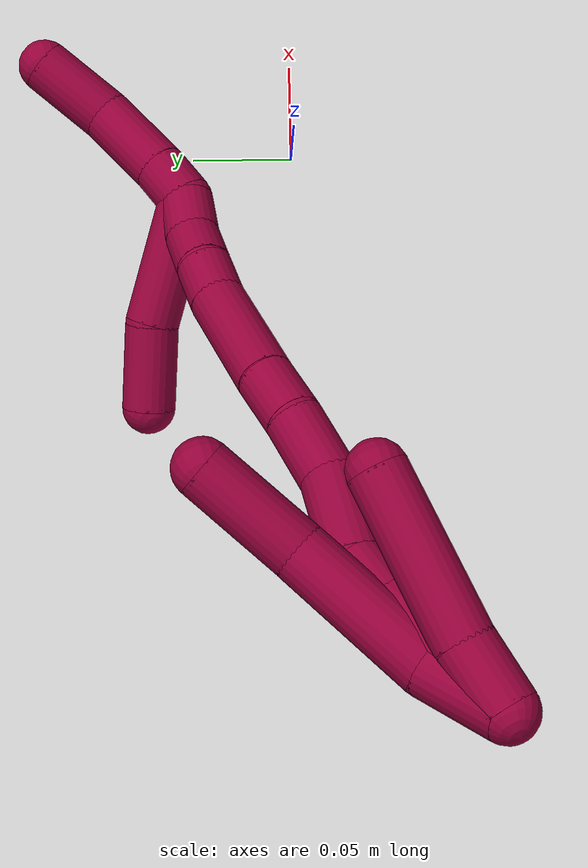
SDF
<sdf version="1.7">
 <world name="default">
  <model name="8">
   <static>0</static>
   <link name="8">
    <collision name="collision-cylinder-e_1_2_8">
     <pose>-0.003934 0.009012 -0.014506 -2.58571 -0.226386 0.758283</pose>
     <geometry><cylinder><radius>0.0125</radius><length>0.035049</length></cylinder></geometry>
     <surface>
      <friction><ode><mu>1.16</mu><mu2>1.16</mu2><slip1>0</slip1><slip2>0</slip2></ode></friction>
      <contact><ode><kp>1e+06</kp><kd>1</kd><max_vel>0</max_vel><min_depth>0.001</min_depth></ode></contact>
     </surface>
    </collision>
    <visual name="visual-cylinder-e_1_2_8">
     <pose>-0.003934 0.009012 -0.014506 -2.58571 -0.226386 0.758283</pose>
     <geometry><cylinder><radius>0.0125</radius><length>0.035049</length></cylinder></geometry>
     <material><ambient>0.584314 0 0.227451 1</ambient></material>
    </visual>
    <collision name="collision-cylinder-e_2_8_9">
     <pose>-0.004793 0.036346 -0.056163 -2.54796 0.093588 -0.303858</pose>
     <geometry><cylinder><radius>0.0125</radius><length>0.065797</length></cylinder></geometry>
     <surface>
      <friction><ode><mu>1.16</mu><mu2>1.16</mu2><slip1>0</slip1><slip2>0</slip2></ode></friction>
      <contact><ode><kp>1e+06</kp><kd>1</kd><max_vel>0</max_vel><min_depth>0.001</min_depth></ode></contact>
     </surface>
    </collision>
    <visual name="visual-cylinder-e_2_8_9">
     <pose>-0.004793 0.036346 -0.056163 -2.54796 0.093588 -0.303858</pose>
     <geometry><cylinder><radius>0.0125</radius><length>0.065797</length></cylinder></geometry>
     <material><ambient>0.584314 0 0.227451 1</ambient></material>
    </visual>
    <collision name="collision-cylinder-e_3_9_6">
     <pose>0.005181 0.072052 -0.099258 -2.31297 0.284556 -0.629791</pose>
     <geometry><cylinder><radius>0.0125</radius><length>0.049153</length></cylinder></geometry>
     <surface>
      <friction><ode><mu>1.16</mu><mu2>1.16</mu2><slip1>0</slip1><slip2>0</slip2></ode></friction>
      <contact><ode><kp>1e+06</kp><kd>1</kd><max_vel>0</max_vel><min_depth>0.001</min_depth></ode></contact>
     </surface>
    </collision>
    <visual name="visual-cylinder-e_3_9_6">
     <pose>0.005181 0.072052 -0.099258 -2.31297 0.284556 -0.629791</pose>
     <geometry><cylinder><radius>0.0125</radius><length>0.049153</length></cylinder></geometry>
     <material><ambient>0.584314 0 0.227451 1</ambient></material>
    </visual>
    <collision name="collision-cylinder-e_1_2_10">
     <pose>0.004374 0.005319 -0.012366 -2.73541 0.314184 -1.31133</pose>
     <geometry><cylinder><radius>0.0125</radius><length>0.028309</length></cylinder></geometry>
     <surface>
      <friction><ode><mu>1.16</mu><mu2>1.16</mu2><slip1>0</slip1><slip2>0</slip2></ode></friction>
      <contact><ode><kp>1e+06</kp><kd>1</kd><max_vel>0</max_vel><min_depth>0.001</min_depth></ode></contact>
     </surface>
    </collision>
    <visual name="visual-cylinder-e_1_2_10">
     <pose>0.004374 0.005319 -0.012366 -2.73541 0.314184 -1.31133</pose>
     <geometry><cylinder><radius>0.0125</radius><length>0.028309</length></cylinder></geometry>
     <material><ambient>0.584314 0 0.227451 1</ambient></material>
    </visual>
    <collision name="collision-cylinder-e_2_10_5">
     <pose>0.023672 0.022344 -0.055149 -2.77419 0.429393 -1.73022</pose>
     <geometry><cylinder><radius>0.0125</radius><length>0.071691</length></cylinder></geometry>
     <surface>
      <friction><ode><mu>1.16</mu><mu2>1.16</mu2><slip1>0</slip1><slip2>0</slip2></ode></friction>
      <contact><ode><kp>1e+06</kp><kd>1</kd><max_vel>0</max_vel><min_depth>0.001</min_depth></ode></contact>
     </surface>
    </collision>
    <visual name="visual-cylinder-e_2_10_5">
     <pose>0.023672 0.022344 -0.055149 -2.77419 0.429393 -1.73022</pose>
     <geometry><cylinder><radius>0.0125</radius><length>0.071691</length></cylinder></geometry>
     <material><ambient>0.584314 0 0.227451 1</ambient></material>
    </visual>
    <collision name="collision-cylinder-e_1_2_11">
     <pose>-0.002416 0.012626 -0.029392 -2.73584 -0.075395 0.362666</pose>
     <geometry><cylinder><radius>0.0125</radius><length>0.064161</length></cylinder></geometry>
     <surface>
      <friction><ode><mu>1.16</mu><mu2>1.16</mu2><slip1>0</slip1><slip2>0</slip2></ode></friction>
      <contact><ode><kp>1e+06</kp><kd>1</kd><max_vel>0</max_vel><min_depth>0.001</min_depth></ode></contact>
     </surface>
    </collision>
    <visual name="visual-cylinder-e_1_2_11">
     <pose>-0.002416 0.012626 -0.029392 -2.73584 -0.075395 0.362666</pose>
     <geometry><cylinder><radius>0.0125</radius><length>0.064161</length></cylinder></geometry>
     <material><ambient>0.584314 0 0.227451 1</ambient></material>
    </visual>
    <collision name="collision-cylinder-e_2_11_12">
     <pose>-0.004558 0.028309 -0.069247 -2.8574 0.025228 -0.175902</pose>
     <geometry><cylinder><radius>0.0125</radius><length>0.021808</length></cylinder></geometry>
     <surface>
      <friction><ode><mu>1.16</mu><mu2>1.16</mu2><slip1>0</slip1><slip2>0</slip2></ode></friction>
      <contact><ode><kp>1e+06</kp><kd>1</kd><max_vel>0</max_vel><min_depth>0.001</min_depth></ode></contact>
     </surface>
    </collision>
    <visual name="visual-cylinder-e_2_11_12">
     <pose>-0.004558 0.028309 -0.069247 -2.8574 0.025228 -0.175902</pose>
     <geometry><cylinder><radius>0.0125</radius><length>0.021808</length></cylinder></geometry>
     <material><ambient>0.584314 0 0.227451 1</ambient></material>
    </visual>
    <collision name="collision-cylinder-e_3_12_13">
     <pose>-0.002094 0.030216 -0.101166 3.08809 0.101494 2.17177</pose>
     <geometry><cylinder><radius>0.0125</radius><length>0.043194</length></cylinder></geometry>
     <surface>
      <friction><ode><mu>1.16</mu><mu2>1.16</mu2><slip1>0</slip1><slip2>0</slip2></ode></friction>
      <contact><ode><kp>1e+06</kp><kd>1</kd><max_vel>0</max_vel><min_depth>0.001</min_depth></ode></contact>
     </surface>
    </collision>
    <visual name="visual-cylinder-e_3_12_13">
     <pose>-0.002094 0.030216 -0.101166 3.08809 0.101494 2.17177</pose>
     <geometry><cylinder><radius>0.0125</radius><length>0.043194</length></cylinder></geometry>
     <material><ambient>0.584314 0 0.227451 1</ambient></material>
    </visual>
    <collision name="collision-cylinder-e_4_13_14">
     <pose>0.003334 0.033311 -0.137249 -2.85923 0.209623 -1.27435</pose>
     <geometry><cylinder><radius>0.0125</radius><length>0.031144</length></cylinder></geometry>
     <surface>
      <friction><ode><mu>1.16</mu><mu2>1.16</mu2><slip1>0</slip1><slip2>0</slip2></ode></friction>
      <contact><ode><kp>1e+06</kp><kd>1</kd><max_vel>0</max_vel><min_depth>0.001</min_depth></ode></contact>
     </surface>
    </collision>
    <visual name="visual-cylinder-e_4_13_14">
     <pose>0.003334 0.033311 -0.137249 -2.85923 0.209623 -1.27435</pose>
     <geometry><cylinder><radius>0.0125</radius><length>0.031144</length></cylinder></geometry>
     <material><ambient>0.584314 0 0.227451 1</ambient></material>
    </visual>
    <collision name="collision-cylinder-e_5_14_15">
     <pose>0.007208 0.04029 -0.164331 -2.92537 0.049625 -0.449589</pose>
     <geometry><cylinder><radius>0.0125</radius><length>0.025533</length></cylinder></geometry>
     <surface>
      <friction><ode><mu>1.16</mu><mu2>1.16</mu2><slip1>0</slip1><slip2>0</slip2></ode></friction>
      <contact><ode><kp>1e+06</kp><kd>1</kd><max_vel>0</max_vel><min_depth>0.001</min_depth></ode></contact>
     </surface>
    </collision>
    <visual name="visual-cylinder-e_5_14_15">
     <pose>0.007208 0.04029 -0.164331 -2.92537 0.049625 -0.449589</pose>
     <geometry><cylinder><radius>0.0125</radius><length>0.025533</length></cylinder></geometry>
     <material><ambient>0.584314 0 0.227451 1</ambient></material>
    </visual>
    <collision name="collision-cylinder-e_6_15_16">
     <pose>0.008589 0.046761 -0.202553 -2.99766 0.028703 -0.393037</pose>
     <geometry><cylinder><radius>0.0125</radius><length>0.052098</length></cylinder></geometry>
     <surface>
      <friction><ode><mu>1.16</mu><mu2>1.16</mu2><slip1>0</slip1><slip2>0</slip2></ode></friction>
      <contact><ode><kp>1e+06</kp><kd>1</kd><max_vel>0</max_vel><min_depth>0.001</min_depth></ode></contact>
     </surface>
    </collision>
    <visual name="visual-cylinder-e_6_15_16">
     <pose>0.008589 0.046761 -0.202553 -2.99766 0.028703 -0.393037</pose>
     <geometry><cylinder><radius>0.0125</radius><length>0.052098</length></cylinder></geometry>
     <material><ambient>0.584314 0 0.227451 1</ambient></material>
    </visual>
    <collision name="collision-cylinder-e_7_16_17">
     <pose>0.011261 0.051535 -0.238387 -3.03869 0.187931 -2.14142</pose>
     <geometry><cylinder><radius>0.0125</radius><length>0.0206</length></cylinder></geometry>
     <surface>
      <friction><ode><mu>1.16</mu><mu2>1.16</mu2><slip1>0</slip1><slip2>0</slip2></ode></friction>
      <contact><ode><kp>1e+06</kp><kd>1</kd><max_vel>0</max_vel><min_depth>0.001</min_depth></ode></contact>
     </surface>
    </collision>
    <visual name="visual-cylinder-e_7_16_17">
     <pose>0.011261 0.051535 -0.238387 -3.03869 0.187931 -2.14142</pose>
     <geometry><cylinder><radius>0.0125</radius><length>0.0206</length></cylinder></geometry>
     <material><ambient>0.584314 0 0.227451 1</ambient></material>
    </visual>
    <collision name="collision-cylinder-e_8_17_18">
     <pose>0.01379 0.052631 -0.259049 -3.1362 0.057066 -2.95329</pose>
     <geometry><cylinder><radius>0.0125</radius><length>0.021229</length></cylinder></geometry>
     <surface>
      <friction><ode><mu>1.16</mu><mu2>1.16</mu2><slip1>0</slip1><slip2>0</slip2></ode></friction>
      <contact><ode><kp>1e+06</kp><kd>1</kd><max_vel>0</max_vel><min_depth>0.001</min_depth></ode></contact>
     </surface>
    </collision>
    <visual name="visual-cylinder-e_8_17_18">
     <pose>0.01379 0.052631 -0.259049 -3.1362 0.057066 -2.95329</pose>
     <geometry><cylinder><radius>0.0125</radius><length>0.021229</length></cylinder></geometry>
     <material><ambient>0.584314 0 0.227451 1</ambient></material>
    </visual>
    <collision name="collision-cylinder-e_9_18_1">
     <pose>0.01824 0.052813 -0.279003 -3.12827 0.389829 -3.07412</pose>
     <geometry><cylinder><radius>0.0125</radius><length>0.020234</length></cylinder></geometry>
     <surface>
      <friction><ode><mu>1.16</mu><mu2>1.16</mu2><slip1>0</slip1><slip2>0</slip2></ode></friction>
      <contact><ode><kp>1e+06</kp><kd>1</kd><max_vel>0</max_vel><min_depth>0.001</min_depth></ode></contact>
     </surface>
    </collision>
    <visual name="visual-cylinder-e_9_18_1">
     <pose>0.01824 0.052813 -0.279003 -3.12827 0.389829 -3.07412</pose>
     <geometry><cylinder><radius>0.0125</radius><length>0.020234</length></cylinder></geometry>
     <material><ambient>0.584314 0 0.227451 1</ambient></material>
    </visual>
    <collision name="collision-cylinder-e_1_1_19">
     <pose>-0.004216 0.058145 -0.275134 -0.375036 -1.07533 0.225318</pose>
     <geometry><cylinder><radius>0.0125</radius><length>0.059794</length></cylinder></geometry>
     <surface>
      <friction><ode><mu>1.16</mu><mu2>1.16</mu2><slip1>0</slip1><slip2>0</slip2></ode></friction>
      <contact><ode><kp>1e+06</kp><kd>1</kd><max_vel>0</max_vel><min_depth>0.001</min_depth></ode></contact>
     </surface>
    </collision>
    <visual name="visual-cylinder-e_1_1_19">
     <pose>-0.004216 0.058145 -0.275134 -0.375036 -1.07533 0.225318</pose>
     <geometry><cylinder><radius>0.0125</radius><length>0.059794</length></cylinder></geometry>
     <material><ambient>0.584314 0 0.227451 1</ambient></material>
    </visual>
    <collision name="collision-cylinder-e_2_19_4">
     <pose>-0.048423 0.062062 -0.252858 0.14146 -1.09874 -0.086697</pose>
     <geometry><cylinder><radius>0.0125</radius><length>0.040206</length></cylinder></geometry>
     <surface>
      <friction><ode><mu>1.16</mu><mu2>1.16</mu2><slip1>0</slip1><slip2>0</slip2></ode></friction>
      <contact><ode><kp>1e+06</kp><kd>1</kd><max_vel>0</max_vel><min_depth>0.001</min_depth></ode></contact>
     </surface>
    </collision>
    <visual name="visual-cylinder-e_2_19_4">
     <pose>-0.048423 0.062062 -0.252858 0.14146 -1.09874 -0.086697</pose>
     <geometry><cylinder><radius>0.0125</radius><length>0.040206</length></cylinder></geometry>
     <material><ambient>0.584314 0 0.227451 1</ambient></material>
    </visual>
    <collision name="collision-cylinder-e_1_1_20">
     <pose>0.023985 0.057388 -0.297915 -2.70574 0.178362 -0.767546</pose>
     <geometry><cylinder><radius>0.0125</radius><length>0.02142</length></cylinder></geometry>
     <surface>
      <friction><ode><mu>1.16</mu><mu2>1.16</mu2><slip1>0</slip1><slip2>0</slip2></ode></friction>
      <contact><ode><kp>1e+06</kp><kd>1</kd><max_vel>0</max_vel><min_depth>0.001</min_depth></ode></contact>
     </surface>
    </collision>
    <visual name="visual-cylinder-e_1_1_20">
     <pose>0.023985 0.057388 -0.297915 -2.70574 0.178362 -0.767546</pose>
     <geometry><cylinder><radius>0.0125</radius><length>0.02142</length></cylinder></geometry>
     <material><ambient>0.584314 0 0.227451 1</ambient></material>
    </visual>
    <collision name="collision-cylinder-e_2_20_21">
     <pose>0.0286 0.071441 -0.324715 -2.63347 0.136666 -0.515406</pose>
     <geometry><cylinder><radius>0.0125</radius><length>0.039849</length></cylinder></geometry>
     <surface>
      <friction><ode><mu>1.16</mu><mu2>1.16</mu2><slip1>0</slip1><slip2>0</slip2></ode></friction>
      <contact><ode><kp>1e+06</kp><kd>1</kd><max_vel>0</max_vel><min_depth>0.001</min_depth></ode></contact>
     </surface>
    </collision>
    <visual name="visual-cylinder-e_2_20_21">
     <pose>0.0286 0.071441 -0.324715 -2.63347 0.136666 -0.515406</pose>
     <geometry><cylinder><radius>0.0125</radius><length>0.039849</length></cylinder></geometry>
     <material><ambient>0.584314 0 0.227451 1</ambient></material>
    </visual>
    <collision name="collision-cylinder-e_3_21_3">
     <pose>0.036104 0.09476 -0.354764 -2.32184 0.249916 -0.56287</pose>
     <geometry><cylinder><radius>0.0125</radius><length>0.038731</length></cylinder></geometry>
     <surface>
      <friction><ode><mu>1.16</mu><mu2>1.16</mu2><slip1>0</slip1><slip2>0</slip2></ode></friction>
      <contact><ode><kp>1e+06</kp><kd>1</kd><max_vel>0</max_vel><min_depth>0.001</min_depth></ode></contact>
     </surface>
    </collision>
    <visual name="visual-cylinder-e_3_21_3">
     <pose>0.036104 0.09476 -0.354764 -2.32184 0.249916 -0.56287</pose>
     <geometry><cylinder><radius>0.0125</radius><length>0.038731</length></cylinder></geometry>
     <material><ambient>0.584314 0 0.227451 1</ambient></material>
    </visual>
    <collision name="collision-sphere-3">
     <pose>0.040893 0.108476 -0.367569 0 -0 0</pose>
     <geometry><sphere><radius>0.0125</radius></sphere></geometry>
     <surface>
      <friction><ode><mu>1.16</mu><mu2>1.16</mu2><slip1>0</slip1><slip2>0</slip2></ode></friction>
      <contact><ode><kp>1e+06</kp><kd>1</kd><max_vel>0</max_vel><min_depth>0.001</min_depth></ode></contact>
     </surface>
    </collision>
    <visual name="visual-sphere-3">
     <pose>0.040893 0.108476 -0.367569 0 -0 0</pose>
     <geometry><sphere><radius>0.0125</radius></sphere></geometry>
     <material><ambient>0.584314 0 0.227451 1</ambient></material>
    </visual>
    <collision name="collision-sphere-21">
     <pose>0.031314 0.081045 -0.34196 0 -0 0</pose>
     <geometry><sphere><radius>0.0125</radius></sphere></geometry>
     <surface>
      <friction><ode><mu>1.16</mu><mu2>1.16</mu2><slip1>0</slip1><slip2>0</slip2></ode></friction>
      <contact><ode><kp>1e+06</kp><kd>1</kd><max_vel>0</max_vel><min_depth>0.001</min_depth></ode></contact>
     </surface>
    </collision>
    <visual name="visual-sphere-21">
     <pose>0.031314 0.081045 -0.34196 0 -0 0</pose>
     <geometry><sphere><radius>0.0125</radius></sphere></geometry>
     <material><ambient>0.584314 0 0.227451 1</ambient></material>
    </visual>
    <collision name="collision-sphere-20">
     <pose>0.025885 0.061838 -0.30747 0 -0 0</pose>
     <geometry><sphere><radius>0.0125</radius></sphere></geometry>
     <surface>
      <friction><ode><mu>1.16</mu><mu2>1.16</mu2><slip1>0</slip1><slip2>0</slip2></ode></friction>
      <contact><ode><kp>1e+06</kp><kd>1</kd><max_vel>0</max_vel><min_depth>0.001</min_depth></ode></contact>
     </surface>
    </collision>
    <visual name="visual-sphere-20">
     <pose>0.025885 0.061838 -0.30747 0 -0 0</pose>
     <geometry><sphere><radius>0.0125</radius></sphere></geometry>
     <material><ambient>0.584314 0 0.227451 1</ambient></material>
    </visual>
    <collision name="collision-sphere-4">
     <pose>-0.066327 0.060774 -0.243808 0 -0 0</pose>
     <geometry><sphere><radius>0.0125</radius></sphere></geometry>
     <surface>
      <friction><ode><mu>1.16</mu><mu2>1.16</mu2><slip1>0</slip1><slip2>0</slip2></ode></friction>
      <contact><ode><kp>1e+06</kp><kd>1</kd><max_vel>0</max_vel><min_depth>0.001</min_depth></ode></contact>
     </surface>
    </collision>
    <visual name="visual-sphere-4">
     <pose>-0.066327 0.060774 -0.243808 0 -0 0</pose>
     <geometry><sphere><radius>0.0125</radius></sphere></geometry>
     <material><ambient>0.584314 0 0.227451 1</ambient></material>
    </visual>
    <collision name="collision-sphere-5">
     <pose>0.038595 0.034051 -0.085565 0 -0 0</pose>
     <geometry><sphere><radius>0.0125</radius></sphere></geometry>
     <surface>
      <friction><ode><mu>1.16</mu><mu2>1.16</mu2><slip1>0</slip1><slip2>0</slip2></ode></friction>
      <contact><ode><kp>1e+06</kp><kd>1</kd><max_vel>0</max_vel><min_depth>0.001</min_depth></ode></contact>
     </surface>
    </collision>
    <visual name="visual-sphere-5">
     <pose>0.038595 0.034051 -0.085565 0 -0 0</pose>
     <geometry><sphere><radius>0.0125</radius></sphere></geometry>
     <material><ambient>0.584314 0 0.227451 1</ambient></material>
    </visual>
    <collision name="collision-sphere-10">
     <pose>0.008749 0.010638 -0.024733 0 -0 0</pose>
     <geometry><sphere><radius>0.0125</radius></sphere></geometry>
     <surface>
      <friction><ode><mu>1.16</mu><mu2>1.16</mu2><slip1>0</slip1><slip2>0</slip2></ode></friction>
      <contact><ode><kp>1e+06</kp><kd>1</kd><max_vel>0</max_vel><min_depth>0.001</min_depth></ode></contact>
     </surface>
    </collision>
    <visual name="visual-sphere-10">
     <pose>0.008749 0.010638 -0.024733 0 -0 0</pose>
     <geometry><sphere><radius>0.0125</radius></sphere></geometry>
     <material><ambient>0.584314 0 0.227451 1</ambient></material>
    </visual>
    <collision name="collision-sphere-6">
     <pose>0.012081 0.089437 -0.115201 0 -0 0</pose>
     <geometry><sphere><radius>0.0125</radius></sphere></geometry>
     <surface>
      <friction><ode><mu>1.16</mu><mu2>1.16</mu2><slip1>0</slip1><slip2>0</slip2></ode></friction>
      <contact><ode><kp>1e+06</kp><kd>1</kd><max_vel>0</max_vel><min_depth>0.001</min_depth></ode></contact>
     </surface>
    </collision>
    <visual name="visual-sphere-6">
     <pose>0.012081 0.089437 -0.115201 0 -0 0</pose>
     <geometry><sphere><radius>0.0125</radius></sphere></geometry>
     <material><ambient>0.584314 0 0.227451 1</ambient></material>
    </visual>
    <collision name="collision-sphere-9">
     <pose>-0.001718 0.054668 -0.083314 0 -0 0</pose>
     <geometry><sphere><radius>0.0125</radius></sphere></geometry>
     <surface>
      <friction><ode><mu>1.16</mu><mu2>1.16</mu2><slip1>0</slip1><slip2>0</slip2></ode></friction>
      <contact><ode><kp>1e+06</kp><kd>1</kd><max_vel>0</max_vel><min_depth>0.001</min_depth></ode></contact>
     </surface>
    </collision>
    <visual name="visual-sphere-9">
     <pose>-0.001718 0.054668 -0.083314 0 -0 0</pose>
     <geometry><sphere><radius>0.0125</radius></sphere></geometry>
     <material><ambient>0.584314 0 0.227451 1</ambient></material>
    </visual>
    <collision name="collision-sphere-2">
     <geometry><sphere><radius>0.0125</radius></sphere></geometry>
     <surface>
      <friction><ode><mu>1.16</mu><mu2>1.16</mu2><slip1>0</slip1><slip2>0</slip2></ode></friction>
      <contact><ode><kp>1e+06</kp><kd>1</kd><max_vel>0</max_vel><min_depth>0.001</min_depth></ode></contact>
     </surface>
    </collision>
    <visual name="visual-sphere-2">
     <geometry><sphere><radius>0.0125</radius></sphere></geometry>
     <material><ambient>0.584314 0 0.227451 1</ambient></material>
    </visual>
    <collision name="collision-sphere-19">
     <pose>-0.030518 0.063351 -0.261908 0 -0 0</pose>
     <geometry><sphere><radius>0.0125</radius></sphere></geometry>
     <surface>
      <friction><ode><mu>1.16</mu><mu2>1.16</mu2><slip1>0</slip1><slip2>0</slip2></ode></friction>
      <contact><ode><kp>1e+06</kp><kd>1</kd><max_vel>0</max_vel><min_depth>0.001</min_depth></ode></contact>
     </surface>
    </collision>
    <visual name="visual-sphere-19">
     <pose>-0.030518 0.063351 -0.261908 0 -0 0</pose>
     <geometry><sphere><radius>0.0125</radius></sphere></geometry>
     <material><ambient>0.584314 0 0.227451 1</ambient></material>
    </visual>
    <collision name="collision-sphere-8">
     <pose>-0.007867 0.018023 -0.029013 0 -0 0</pose>
     <geometry><sphere><radius>0.0125</radius></sphere></geometry>
     <surface>
      <friction><ode><mu>1.16</mu><mu2>1.16</mu2><slip1>0</slip1><slip2>0</slip2></ode></friction>
      <contact><ode><kp>1e+06</kp><kd>1</kd><max_vel>0</max_vel><min_depth>0.001</min_depth></ode></contact>
     </surface>
    </collision>
    <visual name="visual-sphere-8">
     <pose>-0.007867 0.018023 -0.029013 0 -0 0</pose>
     <geometry><sphere><radius>0.0125</radius></sphere></geometry>
     <material><ambient>0.584314 0 0.227451 1</ambient></material>
    </visual>
    <collision name="collision-sphere-11">
     <pose>-0.004833 0.025253 -0.058784 0 -0 0</pose>
     <geometry><sphere><radius>0.0125</radius></sphere></geometry>
     <surface>
      <friction><ode><mu>1.16</mu><mu2>1.16</mu2><slip1>0</slip1><slip2>0</slip2></ode></friction>
      <contact><ode><kp>1e+06</kp><kd>1</kd><max_vel>0</max_vel><min_depth>0.001</min_depth></ode></contact>
     </surface>
    </collision>
    <visual name="visual-sphere-11">
     <pose>-0.004833 0.025253 -0.058784 0 -0 0</pose>
     <geometry><sphere><radius>0.0125</radius></sphere></geometry>
     <material><ambient>0.584314 0 0.227451 1</ambient></material>
    </visual>
    <collision name="collision-sphere-12">
     <pose>-0.004283 0.031365 -0.07971 0 -0 0</pose>
     <geometry><sphere><radius>0.0125</radius></sphere></geometry>
     <surface>
      <friction><ode><mu>1.16</mu><mu2>1.16</mu2><slip1>0</slip1><slip2>0</slip2></ode></friction>
      <contact><ode><kp>1e+06</kp><kd>1</kd><max_vel>0</max_vel><min_depth>0.001</min_depth></ode></contact>
     </surface>
    </collision>
    <visual name="visual-sphere-12">
     <pose>-0.004283 0.031365 -0.07971 0 -0 0</pose>
     <geometry><sphere><radius>0.0125</radius></sphere></geometry>
     <material><ambient>0.584314 0 0.227451 1</ambient></material>
    </visual>
    <collision name="collision-sphere-13">
     <pose>9.4e-05 0.029067 -0.122621 0 -0 0</pose>
     <geometry><sphere><radius>0.0125</radius></sphere></geometry>
     <surface>
      <friction><ode><mu>1.16</mu><mu2>1.16</mu2><slip1>0</slip1><slip2>0</slip2></ode></friction>
      <contact><ode><kp>1e+06</kp><kd>1</kd><max_vel>0</max_vel><min_depth>0.001</min_depth></ode></contact>
     </surface>
    </collision>
    <visual name="visual-sphere-13">
     <pose>9.4e-05 0.029067 -0.122621 0 -0 0</pose>
     <geometry><sphere><radius>0.0125</radius></sphere></geometry>
     <material><ambient>0.584314 0 0.227451 1</ambient></material>
    </visual>
    <collision name="collision-sphere-14">
     <pose>0.006575 0.037555 -0.151877 0 -0 0</pose>
     <geometry><sphere><radius>0.0125</radius></sphere></geometry>
     <surface>
      <friction><ode><mu>1.16</mu><mu2>1.16</mu2><slip1>0</slip1><slip2>0</slip2></ode></friction>
      <contact><ode><kp>1e+06</kp><kd>1</kd><max_vel>0</max_vel><min_depth>0.001</min_depth></ode></contact>
     </surface>
    </collision>
    <visual name="visual-sphere-14">
     <pose>0.006575 0.037555 -0.151877 0 -0 0</pose>
     <geometry><sphere><radius>0.0125</radius></sphere></geometry>
     <material><ambient>0.584314 0 0.227451 1</ambient></material>
    </visual>
    <collision name="collision-sphere-15">
     <pose>0.007841 0.043026 -0.176784 0 -0 0</pose>
     <geometry><sphere><radius>0.0125</radius></sphere></geometry>
     <surface>
      <friction><ode><mu>1.16</mu><mu2>1.16</mu2><slip1>0</slip1><slip2>0</slip2></ode></friction>
      <contact><ode><kp>1e+06</kp><kd>1</kd><max_vel>0</max_vel><min_depth>0.001</min_depth></ode></contact>
     </surface>
    </collision>
    <visual name="visual-sphere-15">
     <pose>0.007841 0.043026 -0.176784 0 -0 0</pose>
     <geometry><sphere><radius>0.0125</radius></sphere></geometry>
     <material><ambient>0.584314 0 0.227451 1</ambient></material>
    </visual>
    <collision name="collision-sphere-16">
     <pose>0.009336 0.050495 -0.228322 0 -0 0</pose>
     <geometry><sphere><radius>0.0125</radius></sphere></geometry>
     <surface>
      <friction><ode><mu>1.16</mu><mu2>1.16</mu2><slip1>0</slip1><slip2>0</slip2></ode></friction>
      <contact><ode><kp>1e+06</kp><kd>1</kd><max_vel>0</max_vel><min_depth>0.001</min_depth></ode></contact>
     </surface>
    </collision>
    <visual name="visual-sphere-16">
     <pose>0.009336 0.050495 -0.228322 0 -0 0</pose>
     <geometry><sphere><radius>0.0125</radius></sphere></geometry>
     <material><ambient>0.584314 0 0.227451 1</ambient></material>
    </visual>
    <collision name="collision-sphere-17">
     <pose>0.013185 0.052574 -0.248452 0 -0 0</pose>
     <geometry><sphere><radius>0.0125</radius></sphere></geometry>
     <surface>
      <friction><ode><mu>1.16</mu><mu2>1.16</mu2><slip1>0</slip1><slip2>0</slip2></ode></friction>
      <contact><ode><kp>1e+06</kp><kd>1</kd><max_vel>0</max_vel><min_depth>0.001</min_depth></ode></contact>
     </surface>
    </collision>
    <visual name="visual-sphere-17">
     <pose>0.013185 0.052574 -0.248452 0 -0 0</pose>
     <geometry><sphere><radius>0.0125</radius></sphere></geometry>
     <material><ambient>0.584314 0 0.227451 1</ambient></material>
    </visual>
    <collision name="collision-sphere-18">
     <pose>0.014396 0.052688 -0.269646 0 -0 0</pose>
     <geometry><sphere><radius>0.0125</radius></sphere></geometry>
     <surface>
      <friction><ode><mu>1.16</mu><mu2>1.16</mu2><slip1>0</slip1><slip2>0</slip2></ode></friction>
      <contact><ode><kp>1e+06</kp><kd>1</kd><max_vel>0</max_vel><min_depth>0.001</min_depth></ode></contact>
     </surface>
    </collision>
    <visual name="visual-sphere-18">
     <pose>0.014396 0.052688 -0.269646 0 -0 0</pose>
     <geometry><sphere><radius>0.0125</radius></sphere></geometry>
     <material><ambient>0.584314 0 0.227451 1</ambient></material>
    </visual>
    <collision name="collision-sphere-1">
     <pose>0.022085 0.052938 -0.28836 0 -0 0</pose>
     <geometry><sphere><radius>0.0125</radius></sphere></geometry>
     <surface>
      <friction><ode><mu>1.16</mu><mu2>1.16</mu2><slip1>0</slip1><slip2>0</slip2></ode></friction>
      <contact><ode><kp>1e+06</kp><kd>1</kd><max_vel>0</max_vel><min_depth>0.001</min_depth></ode></contact>
     </surface>
    </collision>
    <visual name="visual-sphere-1">
     <pose>0.022085 0.052938 -0.28836 0 -0 0</pose>
     <geometry><sphere><radius>0.0125</radius></sphere></geometry>
     <material><ambient>0.584314 0 0.227451 1</ambient></material>
    </visual>
    <inertial>
     <pose>0.005012 0.042936 -0.154546 0 -0 0</pose>
     <mass>0.75</mass>
     <inertia>
      <ixx>4.4e-05</ixx>
      <ixy>0</ixy>
      <ixz>0</ixz>
      <iyy>-5.7e-05</iyy>
      <iyz>0</iyz>
      <izz>-0.000103</izz>
     </inertia>
    </inertial>
   </link>
   <pose>-0.282734 -0.067421 0.205624 0.578449 -0.826192 -0.401616</pose>
  </model>
 </world>
</sdf>
